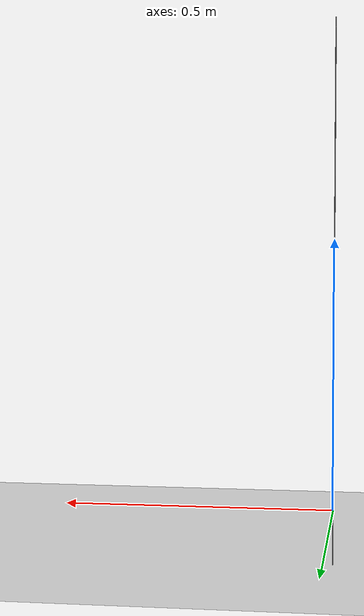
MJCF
<mujoco model="cap_rod">
            <option gravity="0 0 0" timestep="0.001"/>
            <worldbody>
                <geom name="floor" type="plane" size="10 10 0.1"/>
                <body name="cap" pos="0 0 0.4">
                    <joint type="free"/>
                    <geom type="capsule" size="0.001 0.5"/>
                </body>
            </worldbody>
        </mujoco>
